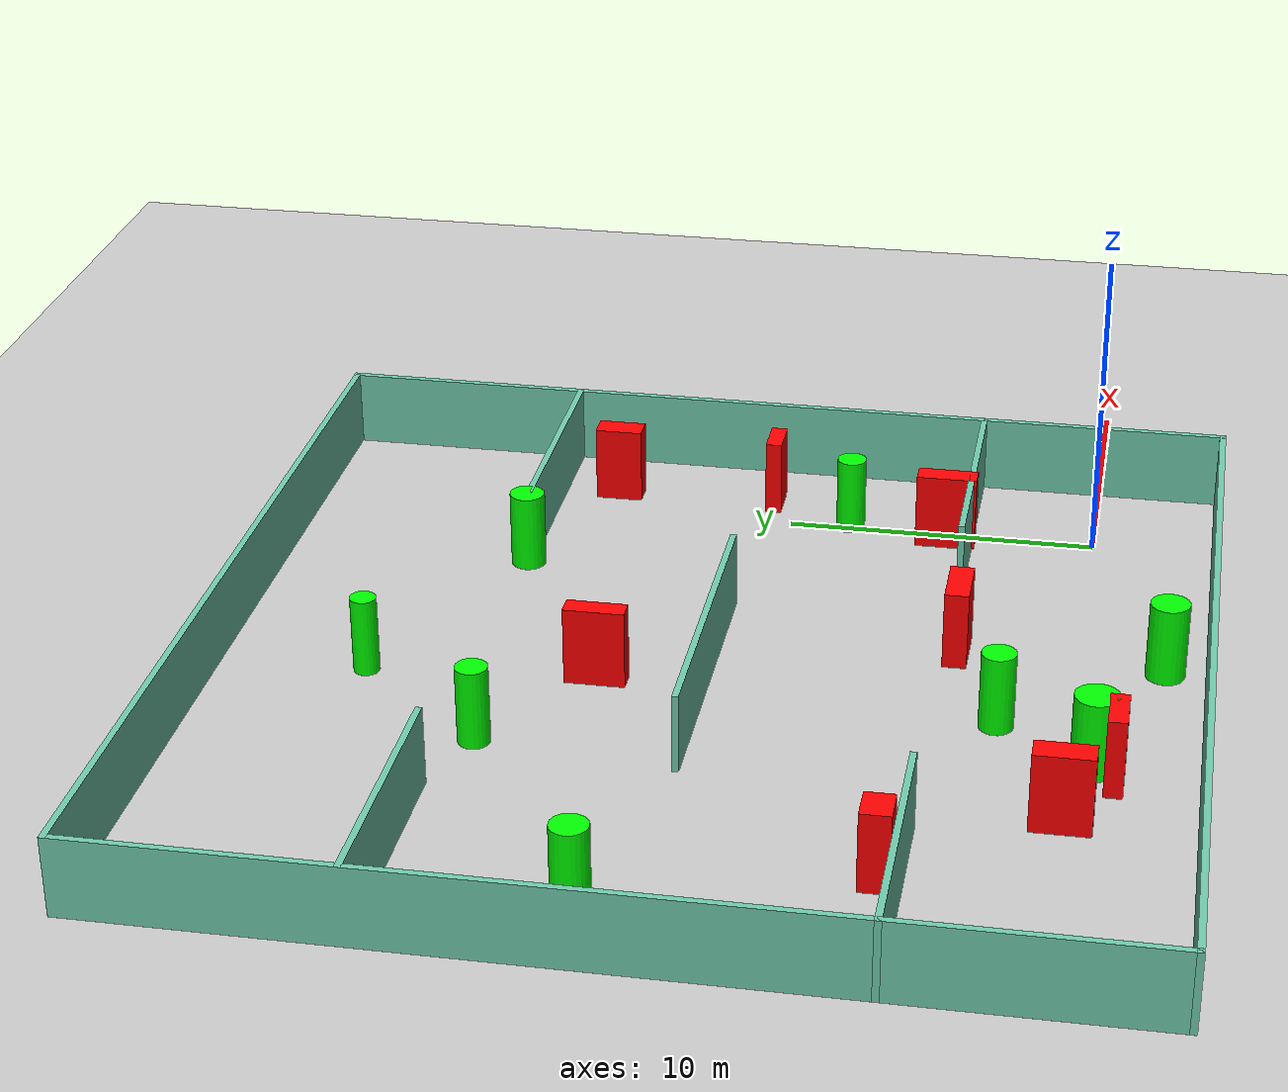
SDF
<sdf version="1.7">
 <world name="default">
  <light name="sun" type="directional">
   <pose>0 0 10 0 -0 0</pose>
   <diffuse>0.8 0.8 0.8 1</diffuse>
   <specular>0.2 0.2 0.2 1</specular>
   <attenuation>
    <range>1000</range>
    <constant>0.9</constant>
    <linear>0.01</linear>
    <quadratic>0.001</quadratic>
   </attenuation>
   <direction>-0.5 0.1 -0.9</direction>
   <spot><inner_angle>0</inner_angle><outer_angle>0</outer_angle><falloff>0</falloff></spot>
  </light>
  <model name="ground_plane">
   <static>1</static>
   <link name="link">
    <collision name="collision">
     <geometry><plane><normal>0 0 1</normal><size>100 100</size></plane></geometry>
     <surface>
      <contact><collide_bitmask>65535</collide_bitmask></contact>
      <friction><ode><mu>100</mu><mu2>50</mu2></ode></friction>
     </surface>
    </collision>
    <visual name="visual">
     <cast_shadows>0</cast_shadows>
     <geometry><plane><normal>0 0 1</normal><size>100 100</size></plane></geometry>
     <material>
      <script><uri>file://media/materials/scripts/gazebo.material</uri><name>Gazebo/Grey</name></script>
     </material>
    </visual>
   </link>
  </model>
  <gravity>0 0 -9.8</gravity>
  <magnetic_field>6e-06 2.3e-05 -4.2e-05</magnetic_field>
  <atmosphere type="adiabatic"/>
  <physics type="ode">
   <max_step_size>0.001</max_step_size>
   <real_time_factor>1</real_time_factor>
   <real_time_update_rate>1000</real_time_update_rate>
  </physics>
  <scene><ambient>0.4 0.4 0.4 1</ambient><background>0.7 0.7 0.7 1</background><shadows>1</shadows></scene>
  <spherical_coordinates>
   <surface_model>EARTH_WGS84</surface_model>
   <latitude_deg>0</latitude_deg>
   <longitude_deg>0</longitude_deg>
   <elevation>0</elevation>
   <heading_deg>0</heading_deg>
  </spherical_coordinates>
  <model name="my_base_walls">
   <link name="Wall_10">
    <collision name="Wall_10_Collision">
     <geometry><box><size>8.2 0.2 2.5</size></box></geometry>
     <pose>0 0 1.25 0 -0 0</pose>
    </collision>
    <visual name="Wall_10_Visual">
     <pose>0 0 1.25 0 -0 0</pose>
     <geometry><box><size>8.2 0.2 2.5</size></box></geometry>
     <material>
      <script><uri>file://media/materials/scripts/gazebo.material</uri><name>Gazebo/Grey</name></script>
      <ambient>0.435294 0.796078 0.67451 1</ambient>
     </material>
     <meta><layer>0</layer></meta>
    </visual>
    <pose>-11 -7 0 0 -0 0</pose>
   </link>
   <link name="Wall_12">
    <collision name="Wall_12_Collision">
     <geometry><box><size>8.2 0.2 2.5</size></box></geometry>
     <pose>0 0 1.25 0 -0 0</pose>
    </collision>
    <visual name="Wall_12_Visual">
     <pose>0 0 1.25 0 -0 0</pose>
     <geometry><box><size>8.2 0.2 2.5</size></box></geometry>
     <material>
      <script><uri>file://media/materials/scripts/gazebo.material</uri><name>Gazebo/Grey</name></script>
      <ambient>0.435294 0.796078 0.67451 1</ambient>
     </material>
     <meta><layer>0</layer></meta>
    </visual>
    <pose>-11 7 0 0 -0 0</pose>
   </link>
   <link name="Wall_14">
    <collision name="Wall_14_Collision">
     <geometry><box><size>8.2 0.2 2.5</size></box></geometry>
     <pose>0 0 1.25 0 -0 0</pose>
    </collision>
    <visual name="Wall_14_Visual">
     <pose>0 0 1.25 0 -0 0</pose>
     <geometry><box><size>8.2 0.2 2.5</size></box></geometry>
     <material>
      <script><uri>file://media/materials/scripts/gazebo.material</uri><name>Gazebo/Grey</name></script>
      <ambient>0.435294 0.796078 0.67451 1</ambient>
     </material>
     <meta><layer>0</layer></meta>
    </visual>
    <pose>11 7 0 0 -0 3.14159</pose>
   </link>
   <link name="Wall_16">
    <collision name="Wall_16_Collision">
     <geometry><box><size>10.2 0.2 2.5</size></box></geometry>
     <pose>0 0 1.25 0 -0 0</pose>
    </collision>
    <visual name="Wall_16_Visual">
     <pose>0 0 1.25 0 -0 0</pose>
     <geometry><box><size>10.2 0.2 2.5</size></box></geometry>
     <material>
      <script><uri>file://media/materials/scripts/gazebo.material</uri><name>Gazebo/Grey</name></script>
      <ambient>0.435294 0.796078 0.67451 1</ambient>
     </material>
     <meta><layer>0</layer></meta>
    </visual>
    <pose>0 0 0 0 -0 3.14159</pose>
   </link>
   <link name="Wall_2">
    <collision name="Wall_2_Collision">
     <geometry><box><size>30.2 0.2 2.5</size></box></geometry>
     <pose>0 0 1.25 0 -0 0</pose>
    </collision>
    <visual name="Wall_2_Visual">
     <pose>0 0 1.25 0 -0 0</pose>
     <geometry><box><size>30.2 0.2 2.5</size></box></geometry>
     <material>
      <script><uri>file://media/materials/scripts/gazebo.material</uri><name>Gazebo/Grey</name></script>
      <ambient>0.435294 0.796078 0.67451 1</ambient>
     </material>
     <meta><layer>0</layer></meta>
    </visual>
    <pose>0 -15 0 0 -0 3.14159</pose>
   </link>
   <link name="Wall_3">
    <collision name="Wall_3_Collision">
     <geometry><box><size>30.2 0.2 2.5</size></box></geometry>
     <pose>0 0 1.25 0 -0 0</pose>
    </collision>
    <visual name="Wall_3_Visual">
     <pose>0 0 1.25 0 -0 0</pose>
     <geometry><box><size>30.2 0.2 2.5</size></box></geometry>
     <material>
      <script><uri>file://media/materials/scripts/gazebo.material</uri><name>Gazebo/Grey</name></script>
      <ambient>0.435294 0.796078 0.67451 1</ambient>
     </material>
     <meta><layer>0</layer></meta>
    </visual>
    <pose>-15 0 0 0 -0 1.5708</pose>
   </link>
   <link name="Wall_4">
    <collision name="Wall_4_Collision">
     <geometry><box><size>30.2 0.2 2.5</size></box></geometry>
     <pose>0 0 1.25 0 -0 0</pose>
    </collision>
    <visual name="Wall_4_Visual">
     <pose>0 0 1.25 0 -0 0</pose>
     <geometry><box><size>30.2 0.2 2.5</size></box></geometry>
     <material>
      <script><uri>file://media/materials/scripts/gazebo.material</uri><name>Gazebo/Grey</name></script>
      <ambient>0.435294 0.796078 0.67451 1</ambient>
     </material>
     <meta><layer>0</layer></meta>
    </visual>
    <pose>0 15 0 0 -0 0</pose>
   </link>
   <link name="Wall_6">
    <collision name="Wall_6_Collision">
     <geometry><box><size>30.2 0.2 2.5</size></box></geometry>
     <pose>0 0 1.25 0 -0 0</pose>
    </collision>
    <visual name="Wall_6_Visual">
     <pose>0 0 1.25 0 -0 0</pose>
     <geometry><box><size>30.2 0.2 2.5</size></box></geometry>
     <material>
      <script><uri>file://media/materials/scripts/gazebo.material</uri><name>Gazebo/Grey</name></script>
      <ambient>0.435294 0.796078 0.67451 1</ambient>
     </material>
     <meta><layer>0</layer></meta>
    </visual>
    <pose>15 0 0 0 -0 1.5708</pose>
   </link>
   <link name="Wall_8">
    <collision name="Wall_8_Collision">
     <geometry><box><size>8.2 0.2 2.5</size></box></geometry>
     <pose>0 0 1.25 0 -0 0</pose>
    </collision>
    <visual name="Wall_8_Visual">
     <pose>0 0 1.25 0 -0 0</pose>
     <geometry><box><size>8.2 0.2 2.5</size></box></geometry>
     <material>
      <script><uri>file://media/materials/scripts/gazebo.material</uri><name>Gazebo/Grey</name></script>
      <ambient>0.435294 0.796078 0.67451 1</ambient>
     </material>
     <meta><layer>0</layer></meta>
    </visual>
    <pose>11 -7 0 0 -0 3.14159</pose>
   </link>
   <static>1</static>
   <pose>-11 11 0 0 -0 0</pose>
  </model>
  <model name="cylinder1">
   <static>1</static>
   <link name="link">
    <inertial>
     <mass>1</mass>
     <inertia><ixx>0.5</ixx><ixy>0</ixy><ixz>0</ixz><iyy>0.5</iyy><iyz>0</iyz><izz>1</izz></inertia>
    </inertial>
    <collision name="collision">
     <geometry><cylinder><radius>0.6726685156833971</radius><length>2.5</length></cylinder></geometry>
    </collision>
    <visual name="visual">
     <geometry><cylinder><radius>0.6726685156833971</radius><length>2.5</length></cylinder></geometry>
     <material>
      <ambient>0 1 0 1</ambient>
      <diffuse>0 1 0 1</diffuse>
      <specular>0.1 0.1 0.1 1</specular>
      <emissive>0 0 0 0</emissive>
     </material>
    </visual>
   </link>
   <pose>-13.950752949337726 -0.8064107624693966 1.25 0 0 0</pose>
  </model>
  <model name="cylinder2">
   <static>1</static>
   <link name="link">
    <inertial>
     <mass>1</mass>
     <inertia><ixx>0.5</ixx><ixy>0</ixy><ixz>0</ixz><iyy>0.5</iyy><iyz>0</iyz><izz>1</izz></inertia>
    </inertial>
    <collision name="collision">
     <geometry><cylinder><radius>0.49166692184109195</radius><length>2.5</length></cylinder></geometry>
    </collision>
    <visual name="visual">
     <geometry><cylinder><radius>0.49166692184109195</radius><length>2.5</length></cylinder></geometry>
     <material>
      <ambient>0 1 0 1</ambient>
      <diffuse>0 1 0 1</diffuse>
      <specular>0.1 0.1 0.1 1</specular>
      <emissive>0 0 0 0</emissive>
     </material>
    </visual>
   </link>
   <pose>-15.410308679772246 17.10825266429232 1.25 0 0 0</pose>
  </model>
  <model name="cylinder3">
   <static>1</static>
   <link name="link">
    <inertial>
     <mass>1</mass>
     <inertia><ixx>0.5</ixx><ixy>0</ixy><ixz>0</ixz><iyy>0.5</iyy><iyz>0</iyz><izz>1</izz></inertia>
    </inertial>
    <collision name="collision">
     <geometry><cylinder><radius>0.4043541016979645</radius><length>2.5</length></cylinder></geometry>
    </collision>
    <visual name="visual">
     <geometry><cylinder><radius>0.4043541016979645</radius><length>2.5</length></cylinder></geometry>
     <material>
      <ambient>0 1 0 1</ambient>
      <diffuse>0 1 0 1</diffuse>
      <specular>0.1 0.1 0.1 1</specular>
      <emissive>0 0 0 0</emissive>
     </material>
    </visual>
   </link>
   <pose>-11.881090410367896 21.33715475583916 1.25 0 0 0</pose>
  </model>
  <model name="cylinder4">
   <static>1</static>
   <link name="link">
    <inertial>
     <mass>1</mass>
     <inertia><ixx>0.5</ixx><ixy>0</ixy><ixz>0</ixz><iyy>0.5</iyy><iyz>0</iyz><izz>1</izz></inertia>
    </inertial>
    <collision name="collision">
     <geometry><cylinder><radius>0.5280882789613033</radius><length>2.5</length></cylinder></geometry>
    </collision>
    <visual name="visual">
     <geometry><cylinder><radius>0.5280882789613033</radius><length>2.5</length></cylinder></geometry>
     <material>
      <ambient>0 1 0 1</ambient>
      <diffuse>0 1 0 1</diffuse>
      <specular>0.1 0.1 0.1 1</specular>
      <emissive>0 0 0 0</emissive>
     </material>
    </visual>
   </link>
   <pose>-11.984086274722333 2.146271479155228 1.25 0 0 0</pose>
  </model>
  <model name="cylinder5">
   <static>1</static>
   <link name="link">
    <inertial>
     <mass>1</mass>
     <inertia><ixx>0.5</ixx><ixy>0</ixy><ixz>0</ixz><iyy>0.5</iyy><iyz>0</iyz><izz>1</izz></inertia>
    </inertial>
    <collision name="collision">
     <geometry><cylinder><radius>0.557163301011253</radius><length>2.5</length></cylinder></geometry>
    </collision>
    <visual name="visual">
     <geometry><cylinder><radius>0.557163301011253</radius><length>2.5</length></cylinder></geometry>
     <material>
      <ambient>0 1 0 1</ambient>
      <diffuse>0 1 0 1</diffuse>
      <specular>0.1 0.1 0.1 1</specular>
      <emissive>0 0 0 0</emissive>
     </material>
    </visual>
   </link>
   <pose>-4.154898471833546 18.03930679844734 1.25 0 0 0</pose>
  </model>
  <model name="cylinder6">
   <static>1</static>
   <link name="link">
    <inertial>
     <mass>1</mass>
     <inertia><ixx>0.5</ixx><ixy>0</ixy><ixz>0</ixz><iyy>0.5</iyy><iyz>0</iyz><izz>1</izz></inertia>
    </inertial>
    <collision name="collision">
     <geometry><cylinder><radius>0.4728649138675767</radius><length>2.5</length></cylinder></geometry>
    </collision>
    <visual name="visual">
     <geometry><cylinder><radius>0.4728649138675767</radius><length>2.5</length></cylinder></geometry>
     <material>
      <ambient>0 1 0 1</ambient>
      <diffuse>0 1 0 1</diffuse>
      <specular>0.1 0.1 0.1 1</specular>
      <emissive>0 0 0 0</emissive>
     </material>
    </visual>
   </link>
   <pose>0.1605397951735128 8.028305864677314 1.25 0 0 0</pose>
  </model>
  <model name="cylinder7">
   <static>1</static>
   <link name="link">
    <inertial>
     <mass>1</mass>
     <inertia><ixx>0.5</ixx><ixy>0</ixy><ixz>0</ixz><iyy>0.5</iyy><iyz>0</iyz><izz>1</izz></inertia>
    </inertial>
    <collision name="collision">
     <geometry><cylinder><radius>0.5632622937701317</radius><length>2.5</length></cylinder></geometry>
    </collision>
    <visual name="visual">
     <geometry><cylinder><radius>0.5632622937701317</radius><length>2.5</length></cylinder></geometry>
     <material>
      <ambient>0 1 0 1</ambient>
      <diffuse>0 1 0 1</diffuse>
      <specular>0.1 0.1 0.1 1</specular>
      <emissive>0 0 0 0</emissive>
     </material>
    </visual>
   </link>
   <pose>-23.10389944424787 12.552825132955876 1.25 0 0 0</pose>
  </model>
  <model name="cylinder8">
   <static>1</static>
   <link name="link">
    <inertial>
     <mass>1</mass>
     <inertia><ixx>0.5</ixx><ixy>0</ixy><ixz>0</ixz><iyy>0.5</iyy><iyz>0</iyz><izz>1</izz></inertia>
    </inertial>
    <collision name="collision">
     <geometry><cylinder><radius>0.6096490037081678</radius><length>2.5</length></cylinder></geometry>
    </collision>
    <visual name="visual">
     <geometry><cylinder><radius>0.6096490037081678</radius><length>2.5</length></cylinder></geometry>
     <material>
      <ambient>0 1 0 1</ambient>
      <diffuse>0 1 0 1</diffuse>
      <specular>0.1 0.1 0.1 1</specular>
      <emissive>0 0 0 0</emissive>
     </material>
    </visual>
   </link>
   <pose>-8.104206656129469 -2.6716746296695417 1.25 0 0 0</pose>
  </model>
  <model name="box1">
   <static>1</static>
   <link name="link">
    <inertial>
     <mass>1</mass>
     <inertia><ixx>0.083</ixx><ixy>0</ixy><ixz>0</ixz><iyy>0.083</iyy><iyz>0</iyz><izz>0.083</izz></inertia>
    </inertial>
    <collision name="collision">
     <geometry><box><size>0.8287814144468767 1.798359243871977 2.5</size></box></geometry>
    </collision>
    <visual name="visual">
     <geometry><box><size>0.8287814144468767 1.798359243871977 2.5</size></box></geometry>
     <material>
      <ambient>1 0 0 1</ambient>
      <diffuse>1 0 0 1</diffuse>
      <specular>0.1 0.1 0.1 1</specular>
      <emissive>0 0 0 0</emissive>
     </material>
    </visual>
    <sensor name="my_contact" type="contact">
     <contact><collision>box_collision</collision><topic>__default_topic__</topic></contact>
    </sensor>
   </link>
   <pose>-17.10882902640256 -0.09582438690715245 1.25 0 0 0</pose>
  </model>
  <model name="box2">
   <static>1</static>
   <link name="link">
    <inertial>
     <mass>1</mass>
     <inertia><ixx>0.083</ixx><ixy>0</ixy><ixz>0</ixz><iyy>0.083</iyy><iyz>0</iyz><izz>0.083</izz></inertia>
    </inertial>
    <collision name="collision">
     <geometry><box><size>1.6175828591266768 0.5708643589503096 2.5</size></box></geometry>
    </collision>
    <visual name="visual">
     <geometry><box><size>1.6175828591266768 0.5708643589503096 2.5</size></box></geometry>
     <material>
      <ambient>1 0 0 1</ambient>
      <diffuse>1 0 0 1</diffuse>
      <specular>0.1 0.1 0.1 1</specular>
      <emissive>0 0 0 0</emissive>
     </material>
    </visual>
    <sensor name="my_contact" type="contact">
     <contact><collision>box_collision</collision><topic>__default_topic__</topic></contact>
    </sensor>
   </link>
   <pose>-14.568643070353524 -1.4510974674888324 1.25 0 0 0</pose>
  </model>
  <model name="box3">
   <static>1</static>
   <link name="link">
    <inertial>
     <mass>1</mass>
     <inertia><ixx>0.083</ixx><ixy>0</ixy><ixz>0</ixz><iyy>0.083</iyy><iyz>0</iyz><izz>0.083</izz></inertia>
    </inertial>
    <collision name="collision">
     <geometry><box><size>0.7103583764118856 1.946918425440057 2.5</size></box></geometry>
    </collision>
    <visual name="visual">
     <geometry><box><size>0.7103583764118856 1.946918425440057 2.5</size></box></geometry>
     <material>
      <ambient>1 0 0 1</ambient>
      <diffuse>1 0 0 1</diffuse>
      <specular>0.1 0.1 0.1 1</specular>
      <emissive>0 0 0 0</emissive>
     </material>
    </visual>
    <sensor name="my_contact" type="contact">
     <contact><collision>box_collision</collision><topic>__default_topic__</topic></contact>
    </sensor>
   </link>
   <pose>-0.4673003308834076 4.799256607645464 1.25 0 0 0</pose>
  </model>
  <model name="box4">
   <static>1</static>
   <link name="link">
    <inertial>
     <mass>1</mass>
     <inertia><ixx>0.083</ixx><ixy>0</ixy><ixz>0</ixz><iyy>0.083</iyy><iyz>0</iyz><izz>0.083</izz></inertia>
    </inertial>
    <collision name="collision">
     <geometry><box><size>0.6633480081514531 1.8842054273204423 2.5</size></box></geometry>
    </collision>
    <visual name="visual">
     <geometry><box><size>0.6633480081514531 1.8842054273204423 2.5</size></box></geometry>
     <material>
      <ambient>1 0 0 1</ambient>
      <diffuse>1 0 0 1</diffuse>
      <specular>0.1 0.1 0.1 1</specular>
      <emissive>0 0 0 0</emissive>
     </material>
    </visual>
    <sensor name="my_contact" type="contact">
     <contact><collision>box_collision</collision><topic>__default_topic__</topic></contact>
    </sensor>
   </link>
   <pose>-11.304204008981685 14.308320095650345 1.25 0 0 0</pose>
  </model>
  <model name="box5">
   <static>1</static>
   <link name="link">
    <inertial>
     <mass>1</mass>
     <inertia><ixx>0.083</ixx><ixy>0</ixy><ixz>0</ixz><iyy>0.083</iyy><iyz>0</iyz><izz>0.083</izz></inertia>
    </inertial>
    <collision name="collision">
     <geometry><box><size>0.8037749895951714 1.539257535192191 2.5</size></box></geometry>
    </collision>
    <visual name="visual">
     <geometry><box><size>0.8037749895951714 1.539257535192191 2.5</size></box></geometry>
     <material>
      <ambient>1 0 0 1</ambient>
      <diffuse>1 0 0 1</diffuse>
      <specular>0.1 0.1 0.1 1</specular>
      <emissive>0 0 0 0</emissive>
     </material>
    </visual>
    <sensor name="my_contact" type="contact">
     <contact><collision>box_collision</collision><topic>__default_topic__</topic></contact>
    </sensor>
   </link>
   <pose>1.2854562625436827 16.05158254409295 1.25 0 0 0</pose>
  </model>
  <model name="box6">
   <static>1</static>
   <link name="link">
    <inertial>
     <mass>1</mass>
     <inertia><ixx>0.083</ixx><ixy>0</ixy><ixz>0</ixz><iyy>0.083</iyy><iyz>0</iyz><izz>0.083</izz></inertia>
    </inertial>
    <collision name="collision">
     <geometry><box><size>1.3396341282473725 0.523257181889922 2.5</size></box></geometry>
    </collision>
    <visual name="visual">
     <geometry><box><size>1.3396341282473725 0.523257181889922 2.5</size></box></geometry>
     <material>
      <ambient>1 0 0 1</ambient>
      <diffuse>1 0 0 1</diffuse>
      <specular>0.1 0.1 0.1 1</specular>
      <emissive>0 0 0 0</emissive>
     </material>
    </visual>
    <sensor name="my_contact" type="contact">
     <contact><collision>box_collision</collision><topic>__default_topic__</topic></contact>
    </sensor>
   </link>
   <pose>1.4385890311032625 10.739311073407002 1.25 0 0 0</pose>
  </model>
  <model name="box7">
   <static>1</static>
   <link name="link">
    <inertial>
     <mass>1</mass>
     <inertia><ixx>0.083</ixx><ixy>0</ixy><ixz>0</ixz><iyy>0.083</iyy><iyz>0</iyz><izz>0.083</izz></inertia>
    </inertial>
    <collision name="collision">
     <geometry><box><size>1.8941691122334863 0.7493557284984133 2.5</size></box></geometry>
    </collision>
    <visual name="visual">
     <geometry><box><size>1.8941691122334863 0.7493557284984133 2.5</size></box></geometry>
     <material>
      <ambient>1 0 0 1</ambient>
      <diffuse>1 0 0 1</diffuse>
      <specular>0.1 0.1 0.1 1</specular>
      <emissive>0 0 0 0</emissive>
     </material>
    </visual>
    <sensor name="my_contact" type="contact">
     <contact><collision>box_collision</collision><topic>__default_topic__</topic></contact>
    </sensor>
   </link>
   <pose>-7.781361484760861 3.703597029411715 1.25 0 0 0</pose>
  </model>
  <model name="box8">
   <static>1</static>
   <link name="link">
    <inertial>
     <mass>1</mass>
     <inertia><ixx>0.083</ixx><ixy>0</ixy><ixz>0</ixz><iyy>0.083</iyy><iyz>0</iyz><izz>0.083</izz></inertia>
    </inertial>
    <collision name="collision">
     <geometry><box><size>1.1319075629250785 0.9132040225745491 2.5</size></box></geometry>
    </collision>
    <visual name="visual">
     <geometry><box><size>1.1319075629250785 0.9132040225745491 2.5</size></box></geometry>
     <material>
      <ambient>1 0 0 1</ambient>
      <diffuse>1 0 0 1</diffuse>
      <specular>0.1 0.1 0.1 1</specular>
      <emissive>0 0 0 0</emissive>
     </material>
    </visual>
    <sensor name="my_contact" type="contact">
     <contact><collision>box_collision</collision><topic>__default_topic__</topic></contact>
    </sensor>
   </link>
   <pose>-20.713188032783197 4.651406223078474 1.25 0 0 0</pose>
  </model>
 </world>
</sdf>
